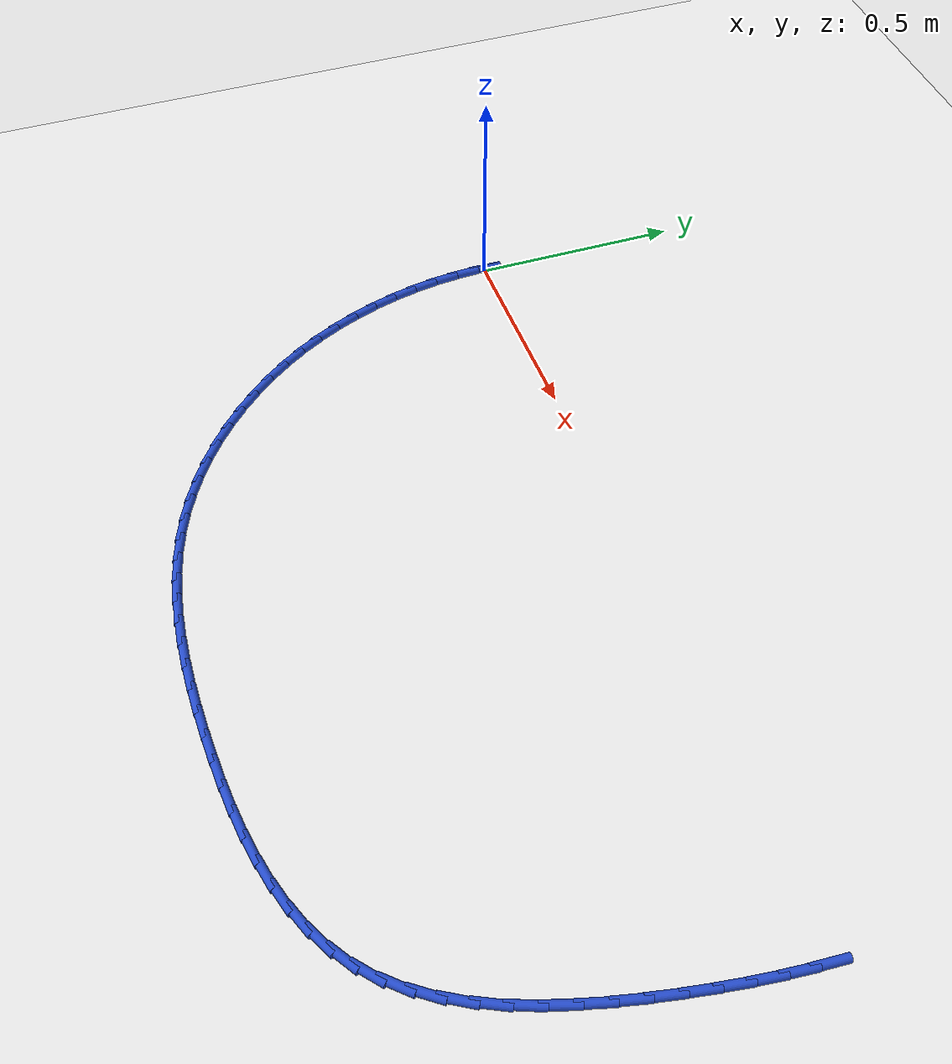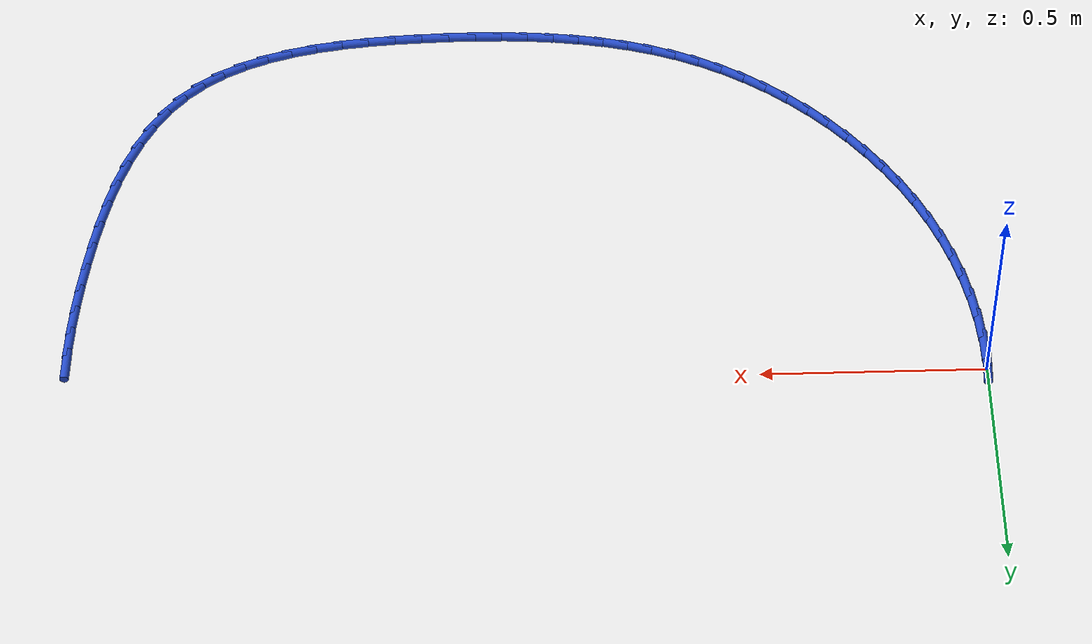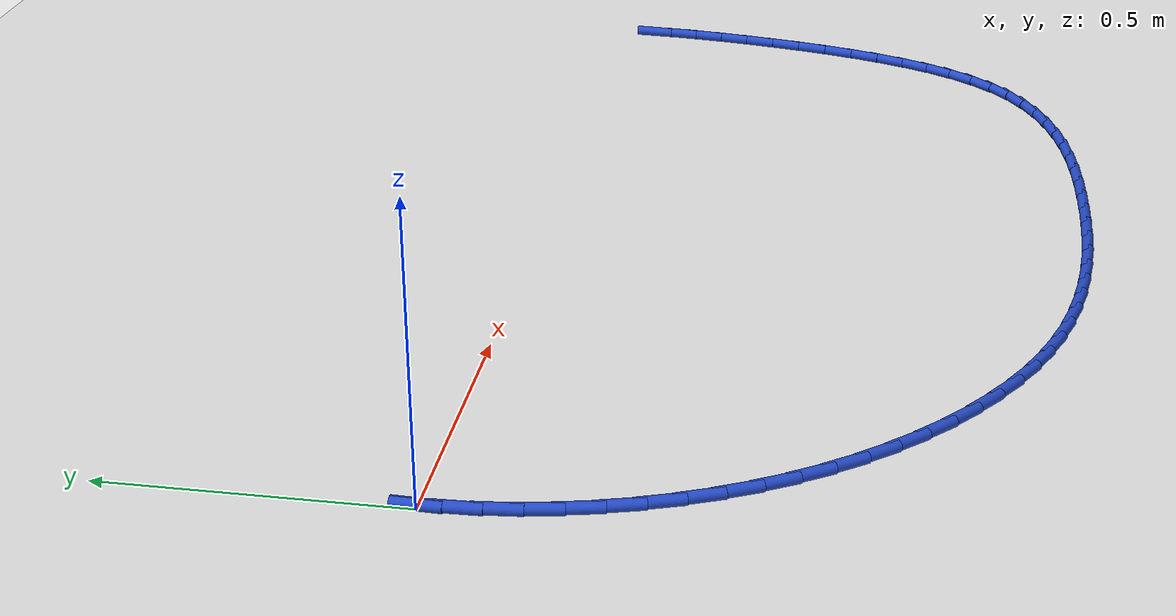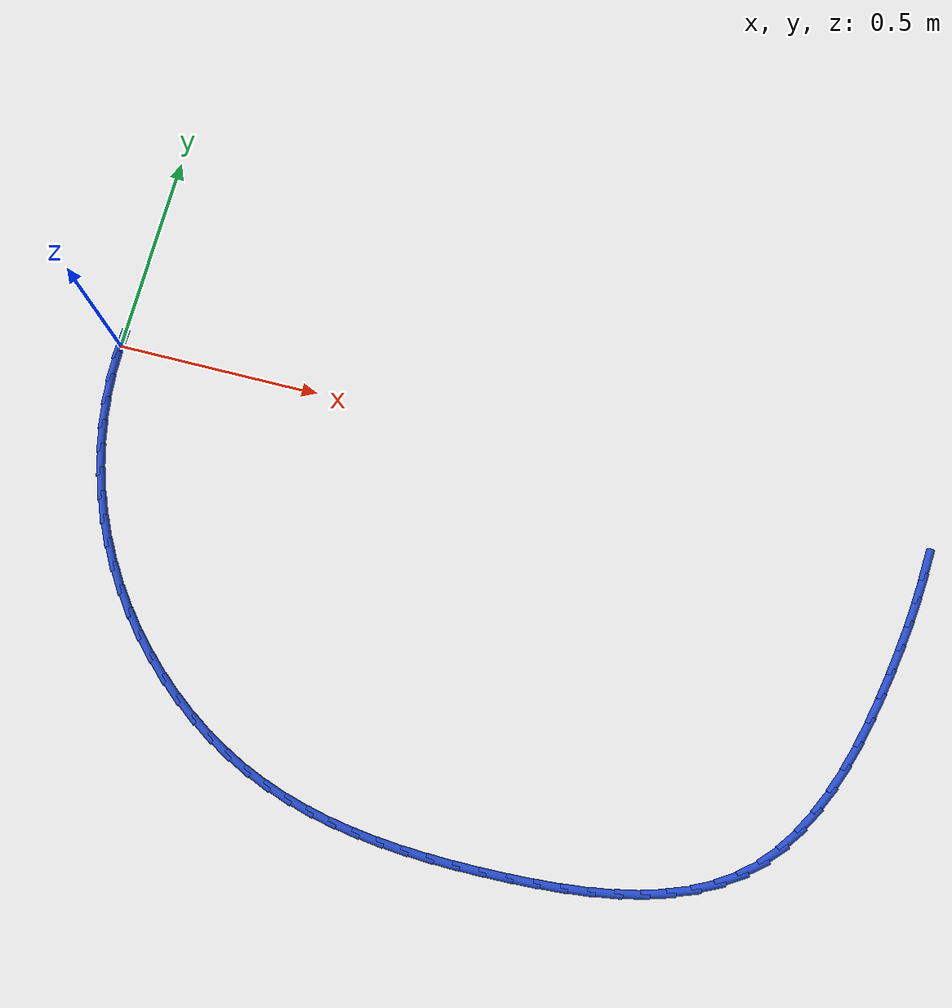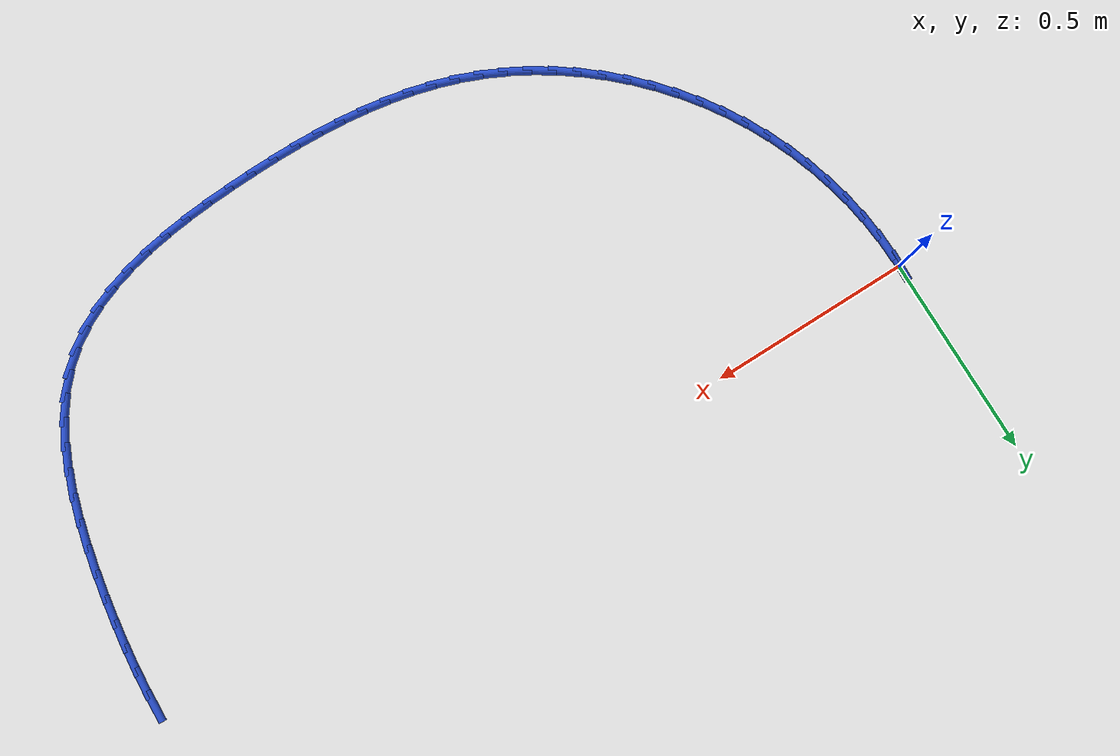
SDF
<sdf version="1.6">
 <world name="default">
  <model name="ground_plane">
   <static>1</static>
   <link name="link">
    <collision name="collision">
     <geometry><plane><normal>0 0 1</normal><size>100 100</size></plane></geometry>
     <surface><friction><ode><mu>100</mu><mu2>50</mu2></ode></friction></surface>
    </collision>
    <visual name="visual">
     <cast_shadows>0</cast_shadows>
     <geometry><plane><normal>0 0 1</normal><size>100 100</size></plane></geometry>
     <material>
      <script><uri>file://media/materials/scripts/gazebo.material</uri><name>Gazebo/WhiteGlow</name></script>
     </material>
    </visual>
   </link>
  </model>
  <model name="line">
   <link name="link_0">
    <pose>4.85722573273506e-17 -1.3877787807814457e-17 0.01 0 1.57 1.5342972665645127</pose>
    <collision name="collision">
     <geometry><cylinder><radius>0.01</radius><length>0.08</length></cylinder></geometry>
    </collision>
    <visual name="visual">
     <material>
      <script><name>Gazebo/Blue</name><uri>file://media/materials/scripts/gazebo.material</uri></script>
     </material>
     <geometry><cylinder><radius>0.01</radius><length>0.08</length></cylinder></geometry>
    </visual>
   </link>
   <link name="link_56">
    <pose>2.019209341390467 -0.05702030967564295 0.01 0 1.57 1.5044035102519528</pose>
    <collision name="collision">
     <geometry><cylinder><radius>0.01</radius><length>0.08</length></cylinder></geometry>
    </collision>
    <visual name="visual">
     <material>
      <script><name>Gazebo/Blue</name><uri>file://media/materials/scripts/gazebo.material</uri></script>
     </material>
     <geometry><cylinder><radius>0.01</radius><length>0.08</length></cylinder></geometry>
    </visual>
   </link>
   <link name="link_57">
    <pose>2.0152639685289047 -0.11635766402427108 0.01 0 1.57 1.4701320966678828</pose>
    <collision name="collision">
     <geometry><cylinder><radius>0.01</radius><length>0.08</length></cylinder></geometry>
    </collision>
    <visual name="visual">
     <material>
      <script><name>Gazebo/Blue</name><uri>file://media/materials/scripts/gazebo.material</uri></script>
     </material>
     <geometry><cylinder><radius>0.01</radius><length>0.08</length></cylinder></geometry>
    </visual>
   </link>
   <link name="link_58">
    <pose>2.009221787476179 -0.17617790198162775 0.01 0 1.57 1.4394924171115595</pose>
    <collision name="collision">
     <geometry><cylinder><radius>0.01</radius><length>0.08</length></cylinder></geometry>
    </collision>
    <visual name="visual">
     <material>
      <script><name>Gazebo/Blue</name><uri>file://media/materials/scripts/gazebo.material</uri></script>
     </material>
     <geometry><cylinder><radius>0.01</radius><length>0.08</length></cylinder></geometry>
    </visual>
   </link>
   <link name="link_59">
    <pose>2.001260917893305 -0.2364584112608125 0.01 0 1.57 1.4123573548261956</pose>
    <collision name="collision">
     <geometry><cylinder><radius>0.01</radius><length>0.08</length></cylinder></geometry>
    </collision>
    <visual name="visual">
     <material>
      <script><name>Gazebo/Blue</name><uri>file://media/materials/scripts/gazebo.material</uri></script>
     </material>
     <geometry><cylinder><radius>0.01</radius><length>0.08</length></cylinder></geometry>
    </visual>
   </link>
   <link name="link_60">
    <pose>1.9915594794412983 -0.2971765795749219 0.01 0 1.57 1.3885673048141498</pose>
    <collision name="collision">
     <geometry><cylinder><radius>0.01</radius><length>0.08</length></cylinder></geometry>
    </collision>
    <visual name="visual">
     <material>
      <script><name>Gazebo/Blue</name><uri>file://media/materials/scripts/gazebo.material</uri></script>
     </material>
     <geometry><cylinder><radius>0.01</radius><length>0.08</length></cylinder></geometry>
    </visual>
   </link>
   <link name="link_61">
    <pose>1.9802944932916366 -0.35830852994591533 0.01 0 1.57 1.3648227170602203</pose>
    <collision name="collision">
     <geometry><cylinder><radius>0.01</radius><length>0.08</length></cylinder></geometry>
    </collision>
    <visual name="visual">
     <material>
      <script><name>Gazebo/Blue</name><uri>file://media/materials/scripts/gazebo.material</uri></script>
     </material>
     <geometry><cylinder><radius>0.01</radius><length>0.08</length></cylinder></geometry>
    </visual>
   </link>
   <link name="link_62">
    <pose>1.9674796156736063 -0.41964230331741564 0.01 0 1.57 1.33430226507807</pose>
    <collision name="collision">
     <geometry><cylinder><radius>0.01</radius><length>0.08</length></cylinder></geometry>
    </collision>
    <visual name="visual">
     <material>
      <script><name>Gazebo/Blue</name><uri>file://media/materials/scripts/gazebo.material</uri></script>
     </material>
     <geometry><cylinder><radius>0.01</radius><length>0.08</length></cylinder></geometry>
    </visual>
   </link>
   <link name="link_63">
    <pose>1.9527933651429414 -0.48058009658766293 0.01 0 1.57 1.2954799011561537</pose>
    <collision name="collision">
     <geometry><cylinder><radius>0.01</radius><length>0.08</length></cylinder></geometry>
    </collision>
    <visual name="visual">
     <material>
      <script><name>Gazebo/Blue</name><uri>file://media/materials/scripts/gazebo.material</uri></script>
     </material>
     <geometry><cylinder><radius>0.01</radius><length>0.08</length></cylinder></geometry>
    </visual>
   </link>
   <link name="link_64">
    <pose>1.9358731397332138 -0.5404767645925987 0.01 0 1.57 1.2472944854868753</pose>
    <collision name="collision">
     <geometry><cylinder><radius>0.01</radius><length>0.08</length></cylinder></geometry>
    </collision>
    <visual name="visual">
     <material>
      <script><name>Gazebo/Blue</name><uri>file://media/materials/scripts/gazebo.material</uri></script>
     </material>
     <geometry><cylinder><radius>0.01</radius><length>0.08</length></cylinder></geometry>
    </visual>
   </link>
   <link name="link_65">
    <pose>1.916356337477996 -0.5986871621681666 0.01 0 1.57 1.1883724327809342</pose>
    <collision name="collision">
     <geometry><cylinder><radius>0.01</radius><length>0.08</length></cylinder></geometry>
    </collision>
    <visual name="visual">
     <material>
      <script><name>Gazebo/Blue</name><uri>file://media/materials/scripts/gazebo.material</uri></script>
     </material>
     <geometry><cylinder><radius>0.01</radius><length>0.08</length></cylinder></geometry>
    </visual>
   </link>
   <link name="link_66">
    <pose>1.8938803564108597 -0.6545661441503108 0.01 0 1.57 1.1170790271693751</pose>
    <collision name="collision">
     <geometry><cylinder><radius>0.01</radius><length>0.08</length></cylinder></geometry>
    </collision>
    <visual name="visual">
     <material>
      <script><name>Gazebo/Blue</name><uri>file://media/materials/scripts/gazebo.material</uri></script>
     </material>
     <geometry><cylinder><radius>0.01</radius><length>0.08</length></cylinder></geometry>
    </visual>
   </link>
   <link name="link_67">
    <pose>1.8680825945653787 -0.7074685653749726 0.01 0 1.57 1.03166523239596</pose>
    <collision name="collision">
     <geometry><cylinder><radius>0.01</radius><length>0.08</length></cylinder></geometry>
    </collision>
    <visual name="visual">
     <material>
      <script><name>Gazebo/Blue</name><uri>file://media/materials/scripts/gazebo.material</uri></script>
     </material>
     <geometry><cylinder><radius>0.01</radius><length>0.08</length></cylinder></geometry>
    </visual>
   </link>
   <link name="link_68">
    <pose>1.8386004499751234 -0.756749280678096 0.01 0 1.57 0.9305914791162931</pose>
    <collision name="collision">
     <geometry><cylinder><radius>0.01</radius><length>0.08</length></cylinder></geometry>
    </collision>
    <visual name="visual">
     <material>
      <script><name>Gazebo/Blue</name><uri>file://media/materials/scripts/gazebo.material</uri></script>
     </material>
     <geometry><cylinder><radius>0.01</radius><length>0.08</length></cylinder></geometry>
    </visual>
   </link>
   <link name="link_69">
    <pose>1.8050713206736688 -0.8017631448956237 0.01 0 1.57 0.8131093637576066</pose>
    <collision name="collision">
     <geometry><cylinder><radius>0.01</radius><length>0.08</length></cylinder></geometry>
    </collision>
    <visual name="visual">
     <material>
      <script><name>Gazebo/Blue</name><uri>file://media/materials/scripts/gazebo.material</uri></script>
     </material>
     <geometry><cylinder><radius>0.01</radius><length>0.08</length></cylinder></geometry>
    </visual>
   </link>
   <link name="link_70">
    <pose>1.767132604694585 -0.8418650128634994 0.01 0 1.57 0.6817268787468262</pose>
    <collision name="collision">
     <geometry><cylinder><radius>0.01</radius><length>0.08</length></cylinder></geometry>
    </collision>
    <visual name="visual">
     <material>
      <script><name>Gazebo/Blue</name><uri>file://media/materials/scripts/gazebo.material</uri></script>
     </material>
     <geometry><cylinder><radius>0.01</radius><length>0.08</length></cylinder></geometry>
    </visual>
   </link>
   <link name="link_71">
    <pose>1.72447944128305 -0.8764789726198591 0.01 0 1.57 0.5550289701840724</pose>
    <collision name="collision">
     <geometry><cylinder><radius>0.01</radius><length>0.08</length></cylinder></geometry>
    </collision>
    <visual name="visual">
     <material>
      <script><name>Gazebo/Blue</name><uri>file://media/materials/scripts/gazebo.material</uri></script>
     </material>
     <geometry><cylinder><radius>0.01</radius><length>0.08</length></cylinder></geometry>
    </visual>
   </link>
   <link name="link_72">
    <pose>1.6773616409166223 -0.9056941773186543 0.01 0 1.57 0.4440938612517827</pose>
    <collision name="collision">
     <geometry><cylinder><radius>0.01</radius><length>0.08</length></cylinder></geometry>
    </collision>
    <visual name="visual">
     <material>
      <script><name>Gazebo/Blue</name><uri>file://media/materials/scripts/gazebo.material</uri></script>
     </material>
     <geometry><cylinder><radius>0.01</radius><length>0.08</length></cylinder></geometry>
    </visual>
   </link>
   <link name="link_73">
    <pose>1.6263383136905871 -0.9299706383341172 0.01 0 1.57 0.3492932920191342</pose>
    <collision name="collision">
     <geometry><cylinder><radius>0.01</radius><length>0.08</length></cylinder></geometry>
    </collision>
    <visual name="visual">
     <material>
      <script><name>Gazebo/Blue</name><uri>file://media/materials/scripts/gazebo.material</uri></script>
     </material>
     <geometry><cylinder><radius>0.01</radius><length>0.08</length></cylinder></geometry>
    </visual>
   </link>
   <link name="link_74">
    <pose>1.5719719248967243 -0.949772390007631 0.01 0 1.57 0.2695965949911879</pose>
    <collision name="collision">
     <geometry><cylinder><radius>0.01</radius><length>0.08</length></cylinder></geometry>
    </collision>
    <visual name="visual">
     <material>
      <script><name>Gazebo/Blue</name><uri>file://media/materials/scripts/gazebo.material</uri></script>
     </material>
     <geometry><cylinder><radius>0.01</radius><length>0.08</length></cylinder></geometry>
    </visual>
   </link>
   <link name="link_75">
    <pose>1.5148249398268163 -0.9655634666805772 0.01 0 1.57 0.20340404197014778</pose>
    <collision name="collision">
     <geometry><cylinder><radius>0.01</radius><length>0.08</length></cylinder></geometry>
    </collision>
    <visual name="visual">
     <material>
      <script><name>Gazebo/Blue</name><uri>file://media/materials/scripts/gazebo.material</uri></script>
     </material>
     <geometry><cylinder><radius>0.01</radius><length>0.08</length></cylinder></geometry>
    </visual>
   </link>
   <link name="link_76">
    <pose>1.455459823772642 -0.9778079026943383 0.01 0 1.57 0.14902958101048952</pose>
    <collision name="collision">
     <geometry><cylinder><radius>0.01</radius><length>0.08</length></cylinder></geometry>
    </collision>
    <visual name="visual">
     <material>
      <script><name>Gazebo/Blue</name><uri>file://media/materials/scripts/gazebo.material</uri></script>
     </material>
     <geometry><cylinder><radius>0.01</radius><length>0.08</length></cylinder></geometry>
    </visual>
   </link>
   <link name="link_77">
    <pose>1.3944390420259838 -0.9869697323902961 0.01 0 1.57 0.104955658365646</pose>
    <collision name="collision">
     <geometry><cylinder><radius>0.01</radius><length>0.08</length></cylinder></geometry>
    </collision>
    <visual name="visual">
     <material>
      <script><name>Gazebo/Blue</name><uri>file://media/materials/scripts/gazebo.material</uri></script>
     </material>
     <geometry><cylinder><radius>0.01</radius><length>0.08</length></cylinder></geometry>
    </visual>
   </link>
   <link name="link_78">
    <pose>1.3323250598786207 -0.9935129901098323 0.01 0 1.57 0.0699430273157714</pose>
    <collision name="collision">
     <geometry><cylinder><radius>0.01</radius><length>0.08</length></cylinder></geometry>
    </collision>
    <visual name="visual">
     <material>
      <script><name>Gazebo/Blue</name><uri>file://media/materials/scripts/gazebo.material</uri></script>
     </material>
     <geometry><cylinder><radius>0.01</radius><length>0.08</length></cylinder></geometry>
    </visual>
   </link>
   <link name="link_79">
    <pose>1.269680342622335 -0.9979017101943295 0.01 0 1.57 0.04306691837480961</pose>
    <collision name="collision">
     <geometry><cylinder><radius>0.01</radius><length>0.08</length></cylinder></geometry>
    </collision>
    <visual name="visual">
     <material>
      <script><name>Gazebo/Blue</name><uri>file://media/materials/scripts/gazebo.material</uri></script>
     </material>
     <geometry><cylinder><radius>0.01</radius><length>0.08</length></cylinder></geometry>
    </visual>
   </link>
   <link name="link_80">
    <pose>1.2070673555489058 -1.0005999269851698 0.01 0 1.57 0.022733405002336227</pose>
    <collision name="collision">
     <geometry><cylinder><radius>0.01</radius><length>0.08</length></cylinder></geometry>
    </collision>
    <visual name="visual">
     <material>
      <script><name>Gazebo/Blue</name><uri>file://media/materials/scripts/gazebo.material</uri></script>
     </material>
     <geometry><cylinder><radius>0.01</radius><length>0.08</length></cylinder></geometry>
    </visual>
   </link>
   <link name="link_81">
    <pose>1.1450034109942329 -1.002011094881963 0.01 0 1.57 0.001349154663888569</pose>
    <collision name="collision">
     <geometry><cylinder><radius>0.01</radius><length>0.08</length></cylinder></geometry>
    </collision>
    <visual name="visual">
     <material>
      <script><name>Gazebo/Blue</name><uri>file://media/materials/scripts/gazebo.material</uri></script>
     </material>
     <geometry><cylinder><radius>0.01</radius><length>0.08</length></cylinder></geometry>
    </visual>
   </link>
   <link name="link_82">
    <pose>1.0836742688473426 -1.0020938374303259 0.01 0 1.57 -0.02452277629612438</pose>
    <collision name="collision">
     <geometry><cylinder><radius>0.01</radius><length>0.08</length></cylinder></geometry>
    </collision>
    <visual name="visual">
     <material>
      <script><name>Gazebo/Blue</name><uri>file://media/materials/scripts/gazebo.material</uri></script>
     </material>
     <geometry><cylinder><radius>0.01</radius><length>0.08</length></cylinder></geometry>
    </visual>
   </link>
   <link name="link_83">
    <pose>1.0231179257317649 -1.000608530024787 0.01 0 1.57 -0.05507564640315728</pose>
    <collision name="collision">
     <geometry><cylinder><radius>0.01</radius><length>0.08</length></cylinder></geometry>
    </collision>
    <visual name="visual">
     <material>
      <script><name>Gazebo/Blue</name><uri>file://media/materials/scripts/gazebo.material</uri></script>
     </material>
     <geometry><cylinder><radius>0.01</radius><length>0.08</length></cylinder></geometry>
    </visual>
   </link>
   <link name="link_84">
    <pose>0.9633716990778136 -0.9973146368130986 0.01 0 1.57 -0.0904675671290196</pose>
    <collision name="collision">
     <geometry><cylinder><radius>0.01</radius><length>0.08</length></cylinder></geometry>
    </collision>
    <visual name="visual">
     <material>
      <script><name>Gazebo/Blue</name><uri>file://media/materials/scripts/gazebo.material</uri></script>
     </material>
     <geometry><cylinder><radius>0.01</radius><length>0.08</length></cylinder></geometry>
    </visual>
   </link>
   <link name="link_85">
    <pose>0.9044729063158021 -0.9919716219430145 0.01 0 1.57 -0.13081461827483493</pose>
    <collision name="collision">
     <geometry><cylinder><radius>0.01</radius><length>0.08</length></cylinder></geometry>
    </collision>
    <visual name="visual">
     <material>
      <script><name>Gazebo/Blue</name><uri>file://media/materials/scripts/gazebo.material</uri></script>
     </material>
     <geometry><cylinder><radius>0.01</radius><length>0.08</length></cylinder></geometry>
    </visual>
   </link>
   <link name="link_86">
    <pose>0.8464588648760459 -0.984338949562288 0.01 0 1.57 -0.17616342850996014</pose>
    <collision name="collision">
     <geometry><cylinder><radius>0.01</radius><length>0.08</length></cylinder></geometry>
    </collision>
    <visual name="visual">
     <material>
      <script><name>Gazebo/Blue</name><uri>file://media/materials/scripts/gazebo.material</uri></script>
     </material>
     <geometry><cylinder><radius>0.01</radius><length>0.08</length></cylinder></geometry>
    </visual>
   </link>
   <link name="link_87">
    <pose>0.789366892188857 -0.9741760838186719 0.01 0 1.57 -0.22645920361852523</pose>
    <collision name="collision">
     <geometry><cylinder><radius>0.01</radius><length>0.08</length></cylinder></geometry>
    </collision>
    <visual name="visual">
     <material>
      <script><name>Gazebo/Blue</name><uri>file://media/materials/scripts/gazebo.material</uri></script>
     </material>
     <geometry><cylinder><radius>0.01</radius><length>0.08</length></cylinder></geometry>
    </visual>
   </link>
   <link name="link_88">
    <pose>0.7332343056845513 -0.9612424888599198 0.01 0 1.57 -0.2815120055772388</pose>
    <collision name="collision">
     <geometry><cylinder><radius>0.01</radius><length>0.08</length></cylinder></geometry>
    </collision>
    <visual name="visual">
     <material>
      <script><name>Gazebo/Blue</name><uri>file://media/materials/scripts/gazebo.material</uri></script>
     </material>
     <geometry><cylinder><radius>0.01</radius><length>0.08</length></cylinder></geometry>
    </visual>
   </link>
   <link name="link_89">
    <pose>0.6780984227934406 -0.9452976288337841 0.01 0 1.57 -0.3409662485563354</pose>
    <collision name="collision">
     <geometry><cylinder><radius>0.01</radius><length>0.08</length></cylinder></geometry>
    </collision>
    <visual name="visual">
     <material>
      <script><name>Gazebo/Blue</name><uri>file://media/materials/scripts/gazebo.material</uri></script>
     </material>
     <geometry><cylinder><radius>0.01</radius><length>0.08</length></cylinder></geometry>
    </visual>
   </link>
   <link name="link_90">
    <pose>0.623996560945841 -0.926100967888019 0.01 0 1.57 -0.40426402831134295</pose>
    <collision name="collision">
     <geometry><cylinder><radius>0.01</radius><length>0.08</length></cylinder></geometry>
    </collision>
    <visual name="visual">
     <material>
      <script><name>Gazebo/Blue</name><uri>file://media/materials/scripts/gazebo.material</uri></script>
     </material>
     <geometry><cylinder><radius>0.01</radius><length>0.08</length></cylinder></geometry>
    </visual>
   </link>
   <link name="link_91">
    <pose>0.5709665379911967 -0.9034132091130225 0.01 0 1.57 -0.46900310422979996</pose>
    <collision name="collision">
     <geometry><cylinder><radius>0.01</radius><length>0.08</length></cylinder></geometry>
    </collision>
    <visual name="visual">
     <material>
      <script><name>Gazebo/Blue</name><uri>file://media/materials/scripts/gazebo.material</uri></script>
     </material>
     <geometry><cylinder><radius>0.01</radius><length>0.08</length></cylinder></geometry>
    </visual>
   </link>
   <link name="link_92">
    <pose>0.5191017605754595 -0.8771326828924009 0.01 0 1.57 -0.5318376503992599</pose>
    <collision name="collision">
     <geometry><cylinder><radius>0.01</radius><length>0.08</length></cylinder></geometry>
    </collision>
    <visual name="visual">
     <material>
      <script><name>Gazebo/Blue</name><uri>file://media/materials/scripts/gazebo.material</uri></script>
     </material>
     <geometry><cylinder><radius>0.01</radius><length>0.08</length></cylinder></geometry>
    </visual>
   </link>
   <link name="link_93">
    <pose>0.46860102613954385 -0.8474186471842334 0.01 0 1.57 -0.592822859542211</pose>
    <collision name="collision">
     <geometry><cylinder><radius>0.01</radius><length>0.08</length></cylinder></geometry>
    </collision>
    <visual name="visual">
     <material>
      <script><name>Gazebo/Blue</name><uri>file://media/materials/scripts/gazebo.material</uri></script>
     </material>
     <geometry><cylinder><radius>0.01</radius><length>0.08</length></cylinder></geometry>
    </visual>
   </link>
   <link name="link_94">
    <pose>0.4196748896018566 -0.8144594692258759 0.01 0 1.57 -0.6524042980762365</pose>
    <collision name="collision">
     <geometry><cylinder><radius>0.01</radius><length>0.08</length></cylinder></geometry>
    </collision>
    <visual name="visual">
     <material>
      <script><name>Gazebo/Blue</name><uri>file://media/materials/scripts/gazebo.material</uri></script>
     </material>
     <geometry><cylinder><radius>0.01</radius><length>0.08</length></cylinder></geometry>
    </visual>
   </link>
   <link name="link_95">
    <pose>0.37253390588080254 -0.7784435162546817 0.01 0 1.57 -0.7110271665834348</pose>
    <collision name="collision">
     <geometry><cylinder><radius>0.01</radius><length>0.08</length></cylinder></geometry>
    </collision>
    <visual name="visual">
     <material>
      <script><name>Gazebo/Blue</name><uri>file://media/materials/scripts/gazebo.material</uri></script>
     </material>
     <geometry><cylinder><radius>0.01</radius><length>0.08</length></cylinder></geometry>
    </visual>
   </link>
   <link name="link_96">
    <pose>0.32738862989478884 -0.7395591555080063 0.01 0 1.57 -0.7691326571296916</pose>
    <collision name="collision">
     <geometry><cylinder><radius>0.01</radius><length>0.08</length></cylinder></geometry>
    </collision>
    <visual name="visual">
     <material>
      <script><name>Gazebo/Blue</name><uri>file://media/materials/scripts/gazebo.material</uri></script>
     </material>
     <geometry><cylinder><radius>0.01</radius><length>0.08</length></cylinder></geometry>
    </visual>
   </link>
   <link name="link_97">
    <pose>0.2844496165622209 -0.697994754223204 0.01 0 1.57 -0.8271562239660349</pose>
    <collision name="collision">
     <geometry><cylinder><radius>0.01</radius><length>0.08</length></cylinder></geometry>
    </collision>
    <visual name="visual">
     <material>
      <script><name>Gazebo/Blue</name><uri>file://media/materials/scripts/gazebo.material</uri></script>
     </material>
     <geometry><cylinder><radius>0.01</radius><length>0.08</length></cylinder></geometry>
    </visual>
   </link>
   <link name="link_98">
    <pose>0.2439274208015041 -0.6539386796376286 0.01 0 1.57 -0.8855267063757993</pose>
    <collision name="collision">
     <geometry><cylinder><radius>0.01</radius><length>0.08</length></cylinder></geometry>
    </collision>
    <visual name="visual">
     <material>
      <script><name>Gazebo/Blue</name><uri>file://media/materials/scripts/gazebo.material</uri></script>
     </material>
     <geometry><cylinder><radius>0.01</radius><length>0.08</length></cylinder></geometry>
    </visual>
   </link>
   <link name="link_99">
    <pose>0.20603259753104539 -0.6075792989886357 0.01 0 1.57 -0.9446653580625995</pose>
    <collision name="collision">
     <geometry><cylinder><radius>0.01</radius><length>0.08</length></cylinder></geometry>
    </collision>
    <visual name="visual">
     <material>
      <script><name>Gazebo/Blue</name><uri>file://media/materials/scripts/gazebo.material</uri></script>
     </material>
     <geometry><cylinder><radius>0.01</radius><length>0.08</length></cylinder></geometry>
    </visual>
   </link>
   <link name="link_100">
    <pose>0.1709757016692498 -0.5591049795135791 0.01 0 1.57 -1.0048925247796747</pose>
    <collision name="collision">
     <geometry><cylinder><radius>0.01</radius><length>0.08</length></cylinder></geometry>
    </collision>
    <visual name="visual">
     <material>
      <script><name>Gazebo/Blue</name><uri>file://media/materials/scripts/gazebo.material</uri></script>
     </material>
     <geometry><cylinder><radius>0.01</radius><length>0.08</length></cylinder></geometry>
    </visual>
   </link>
   <link name="link_101">
    <pose>0.13896091738837046 -0.5087042333901561 0.01 0 1.57 -1.0653306925220782</pose>
    <collision name="collision">
     <geometry><cylinder><radius>0.01</radius><length>0.08</length></cylinder></geometry>
    </collision>
    <visual name="visual">
     <material>
      <script><name>Gazebo/Blue</name><uri>file://media/materials/scripts/gazebo.material</uri></script>
     </material>
     <geometry><cylinder><radius>0.01</radius><length>0.08</length></cylinder></geometry>
    </visual>
   </link>
   <link name="link_102">
    <pose>0.11010737693287836 -0.45656750780574834 0.01 0 1.57 -1.125293027320985</pose>
    <collision name="collision">
     <geometry><cylinder><radius>0.01</radius><length>0.08</length></cylinder></geometry>
    </collision>
    <visual name="visual">
     <material>
      <script><name>Gazebo/Blue</name><uri>file://media/materials/scripts/gazebo.material</uri></script>
     </material>
     <geometry><cylinder><radius>0.01</radius><length>0.08</length></cylinder></geometry>
    </visual>
   </link>
   <link name="link_103">
    <pose>0.08447362548550856 -0.4028866283591915 0.01 0 1.57 -1.1849216230772255</pose>
    <collision name="collision">
     <geometry><cylinder><radius>0.01</radius><length>0.08</length></cylinder></geometry>
    </collision>
    <visual name="visual">
     <material>
      <script><name>Gazebo/Blue</name><uri>file://media/materials/scripts/gazebo.material</uri></script>
     </material>
     <geometry><cylinder><radius>0.01</radius><length>0.08</length></cylinder></geometry>
    </visual>
   </link>
   <link name="link_104">
    <pose>0.06211690759886361 -0.34785345023985204 0.01 0 1.57 -1.2443886508051338</pose>
    <collision name="collision">
     <geometry><cylinder><radius>0.01</radius><length>0.08</length></cylinder></geometry>
    </collision>
    <visual name="visual">
     <material>
      <script><name>Gazebo/Blue</name><uri>file://media/materials/scripts/gazebo.material</uri></script>
     </material>
     <geometry><cylinder><radius>0.01</radius><length>0.08</length></cylinder></geometry>
    </visual>
   </link>
   <link name="link_105">
    <pose>0.043094467825547225 -0.29165982863709927 0.01 0 1.57 -1.3038731605534586</pose>
    <collision name="collision">
     <geometry><cylinder><radius>0.01</radius><length>0.08</length></cylinder></geometry>
    </collision>
    <visual name="visual">
     <material>
      <script><name>Gazebo/Blue</name><uri>file://media/materials/scripts/gazebo.material</uri></script>
     </material>
     <geometry><cylinder><radius>0.01</radius><length>0.08</length></cylinder></geometry>
    </visual>
   </link>
   <link name="link_106">
    <pose>0.027463550718162096 -0.23449761874029973 0.01 0 1.57 -1.3635566523677098</pose>
    <collision name="collision">
     <geometry><cylinder><radius>0.01</radius><length>0.08</length></cylinder></geometry>
    </collision>
    <visual name="visual">
     <material>
      <script><name>Gazebo/Blue</name><uri>file://media/materials/scripts/gazebo.material</uri></script>
     </material>
     <geometry><cylinder><radius>0.01</radius><length>0.08</length></cylinder></geometry>
    </visual>
   </link>
   <link name="link_107">
    <pose>0.015281400829311778 -0.17655867573882275 0.01 0 1.57 -1.4236186149725405</pose>
    <collision name="collision">
     <geometry><cylinder><radius>0.01</radius><length>0.08</length></cylinder></geometry>
    </collision>
    <visual name="visual">
     <material>
      <script><name>Gazebo/Blue</name><uri>file://media/materials/scripts/gazebo.material</uri></script>
     </material>
     <geometry><cylinder><radius>0.01</radius><length>0.08</length></cylinder></geometry>
    </visual>
   </link>
   <link name="link_108">
    <pose>0.0066052627115991205 -0.1180348548220347 0.01 0 1.57 -1.4842318720507404</pose>
    <collision name="collision">
     <geometry><cylinder><radius>0.01</radius><length>0.08</length></cylinder></geometry>
    </collision>
    <visual name="visual">
     <material>
      <script><name>Gazebo/Blue</name><uri>file://media/materials/scripts/gazebo.material</uri></script>
     </material>
     <geometry><cylinder><radius>0.01</radius><length>0.08</length></cylinder></geometry>
    </visual>
   </link>
   <link name="link_109">
    <pose>0.0014923809176275189 -0.05911801117930489 0.01 0 1.57 -1.545557588291775</pose>
    <collision name="collision">
     <geometry><cylinder><radius>0.01</radius><length>0.08</length></cylinder></geometry>
    </collision>
    <visual name="visual">
     <material>
      <script><name>Gazebo/Blue</name><uri>file://media/materials/scripts/gazebo.material</uri></script>
     </material>
     <geometry><cylinder><radius>0.01</radius><length>0.08</length></cylinder></geometry>
    </visual>
   </link>
   <link name="link_110">
    <pose>3.122502256758253e-17 9.71445146547012e-17 0.01 0 1.57 1.5338528279301027</pose>
    <collision name="collision">
     <geometry><cylinder><radius>0.01</radius><length>0.08</length></cylinder></geometry>
    </collision>
    <visual name="visual">
     <material>
      <script><name>Gazebo/Blue</name><uri>file://media/materials/scripts/gazebo.material</uri></script>
     </material>
     <geometry><cylinder><radius>0.01</radius><length>0.08</length></cylinder></geometry>
    </visual>
   </link>
  </model>
 </world>
</sdf>
